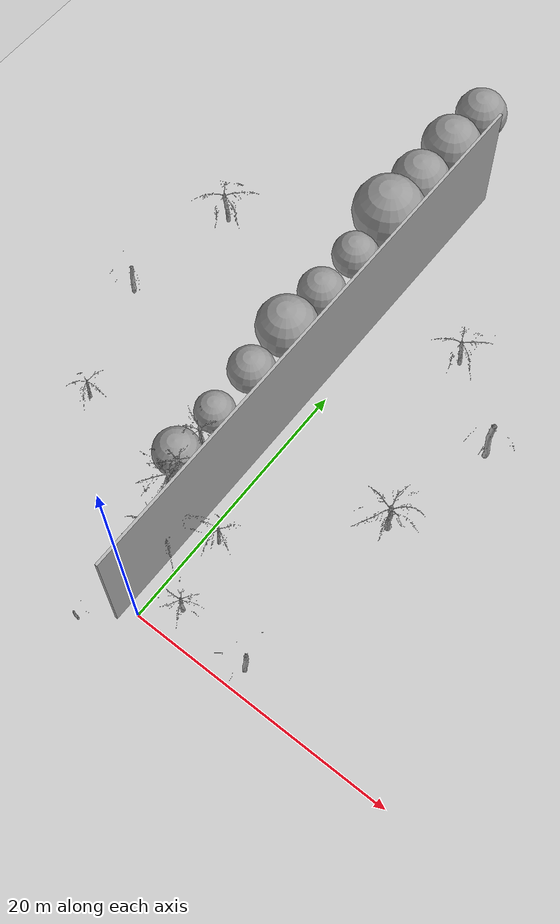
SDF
<sdf version="1.6">
 <world name="default">
  <model name="ground_plane">
   <static>1</static>
   <link name="link">
    <collision name="collision">
     <geometry><plane><normal>0 0 1</normal><size>1000 1000</size></plane></geometry>
     <surface>
      <contact><collide_bitmask>65535</collide_bitmask></contact>
      <friction><ode><mu>100</mu><mu2>50</mu2></ode></friction>
     </surface>
    </collision>
    <visual name="visual">
     <cast_shadows>0</cast_shadows>
     <geometry><plane><normal>0 0 1</normal><size>1000 1000</size></plane></geometry>
     <material>
      <script><uri>file://media/materials/scripts/gazebo.material</uri><name>Gazebo/Grey</name></script>
     </material>
    </visual>
   </link>
  </model>
  <model name="unit_sphere_0">
   <pose>-5 10 1.75 0 -0 0</pose>
   <static>1</static>
   <link name="link">
    <inertial>
     <mass>1</mass>
     <inertia><ixx>0.1</ixx><ixy>0</ixy><ixz>0</ixz><iyy>0.1</iyy><iyz>0</iyz><izz>0.1</izz></inertia>
    </inertial>
    <collision name="collision"><geometry><sphere><radius>1.75</radius></sphere></geometry></collision>
    <visual name="visual">
     <geometry><sphere><radius>1.75</radius></sphere></geometry>
     <material>
      <script><name>Gazebo/Grey</name><uri>file://media/materials/scripts/gazebo.material</uri></script>
     </material>
    </visual>
   </link>
  </model>
  <model name="unit_sphere_1">
   <pose>-5 14 1.5 0 -0 0</pose>
   <static>1</static>
   <link name="link">
    <inertial>
     <mass>1</mass>
     <inertia><ixx>0.1</ixx><ixy>0</ixy><ixz>0</ixz><iyy>0.1</iyy><iyz>0</iyz><izz>0.1</izz></inertia>
    </inertial>
    <collision name="collision"><geometry><sphere><radius>1.5</radius></sphere></geometry></collision>
    <visual name="visual">
     <geometry><sphere><radius>1.5</radius></sphere></geometry>
     <material>
      <script><name>Gazebo/Grey</name><uri>file://media/materials/scripts/gazebo.material</uri></script>
     </material>
    </visual>
   </link>
  </model>
  <model name="unit_sphere_2">
   <pose>-5 18 1.75 0 -0 0</pose>
   <static>1</static>
   <link name="link">
    <inertial>
     <mass>1</mass>
     <inertia><ixx>0.1</ixx><ixy>0</ixy><ixz>0</ixz><iyy>0.1</iyy><iyz>0</iyz><izz>0.1</izz></inertia>
    </inertial>
    <collision name="collision"><geometry><sphere><radius>1.75</radius></sphere></geometry></collision>
    <visual name="visual">
     <geometry><sphere><radius>1.75</radius></sphere></geometry>
     <material>
      <script><name>Gazebo/Grey</name><uri>file://media/materials/scripts/gazebo.material</uri></script>
     </material>
    </visual>
   </link>
  </model>
  <model name="unit_sphere_3">
   <pose>-5 22 2.3 0 -0 0</pose>
   <static>1</static>
   <link name="link">
    <inertial>
     <mass>1</mass>
     <inertia><ixx>0.1</ixx><ixy>0</ixy><ixz>0</ixz><iyy>0.1</iyy><iyz>0</iyz><izz>0.1</izz></inertia>
    </inertial>
    <collision name="collision"><geometry><sphere><radius>2.3</radius></sphere></geometry></collision>
    <visual name="visual">
     <geometry><sphere><radius>2.3</radius></sphere></geometry>
     <material>
      <script><name>Gazebo/Grey</name><uri>file://media/materials/scripts/gazebo.material</uri></script>
     </material>
    </visual>
   </link>
  </model>
  <model name="unit_sphere_4">
   <pose>-5 26 1.8 0 -0 0</pose>
   <static>1</static>
   <link name="link">
    <inertial>
     <mass>1</mass>
     <inertia><ixx>0.1</ixx><ixy>0</ixy><ixz>0</ixz><iyy>0.1</iyy><iyz>0</iyz><izz>0.1</izz></inertia>
    </inertial>
    <collision name="collision"><geometry><sphere><radius>1.8</radius></sphere></geometry></collision>
    <visual name="visual">
     <geometry><sphere><radius>1.8</radius></sphere></geometry>
     <material>
      <script><name>Gazebo/Grey</name><uri>file://media/materials/scripts/gazebo.material</uri></script>
     </material>
    </visual>
   </link>
  </model>
  <model name="unit_sphere_5">
   <pose>-5 30 1.75 0 -0 0</pose>
   <static>1</static>
   <link name="link">
    <inertial>
     <mass>1</mass>
     <inertia><ixx>0.1</ixx><ixy>0</ixy><ixz>0</ixz><iyy>0.1</iyy><iyz>0</iyz><izz>0.1</izz></inertia>
    </inertial>
    <collision name="collision"><geometry><sphere><radius>1.75</radius></sphere></geometry></collision>
    <visual name="visual">
     <geometry><sphere><radius>1.75</radius></sphere></geometry>
     <material>
      <script><name>Gazebo/Grey</name><uri>file://media/materials/scripts/gazebo.material</uri></script>
     </material>
    </visual>
   </link>
  </model>
  <model name="unit_sphere_6">
   <pose>-5 34 2.75 0 -0 0</pose>
   <static>1</static>
   <link name="link">
    <inertial>
     <mass>1</mass>
     <inertia><ixx>0.1</ixx><ixy>0</ixy><ixz>0</ixz><iyy>0.1</iyy><iyz>0</iyz><izz>0.1</izz></inertia>
    </inertial>
    <collision name="collision"><geometry><sphere><radius>2.75</radius></sphere></geometry></collision>
    <visual name="visual">
     <geometry><sphere><radius>2.75</radius></sphere></geometry>
     <material>
      <script><name>Gazebo/Grey</name><uri>file://media/materials/scripts/gazebo.material</uri></script>
     </material>
    </visual>
   </link>
  </model>
  <model name="unit_sphere_7">
   <pose>-5 38 2.25 0 -0 0</pose>
   <static>1</static>
   <link name="link">
    <inertial>
     <mass>1</mass>
     <inertia><ixx>0.1</ixx><ixy>0</ixy><ixz>0</ixz><iyy>0.1</iyy><iyz>0</iyz><izz>0.1</izz></inertia>
    </inertial>
    <collision name="collision"><geometry><sphere><radius>2.25</radius></sphere></geometry></collision>
    <visual name="visual">
     <geometry><sphere><radius>2.25</radius></sphere></geometry>
     <material>
      <script><name>Gazebo/Grey</name><uri>file://media/materials/scripts/gazebo.material</uri></script>
     </material>
    </visual>
   </link>
  </model>
  <model name="unit_sphere_8">
   <pose>-5 42 2.3 0 -0 0</pose>
   <static>1</static>
   <link name="link">
    <inertial>
     <mass>1</mass>
     <inertia><ixx>0.1</ixx><ixy>0</ixy><ixz>0</ixz><iyy>0.1</iyy><iyz>0</iyz><izz>0.1</izz></inertia>
    </inertial>
    <collision name="collision"><geometry><sphere><radius>2.3</radius></sphere></geometry></collision>
    <visual name="visual">
     <geometry><sphere><radius>2.3</radius></sphere></geometry>
     <material>
      <script><name>Gazebo/Grey</name><uri>file://media/materials/scripts/gazebo.material</uri></script>
     </material>
    </visual>
   </link>
  </model>
  <model name="unit_sphere_9">
   <pose>-5 46 2 0 -0 0</pose>
   <static>1</static>
   <link name="link">
    <inertial>
     <mass>1</mass>
     <inertia><ixx>0.1</ixx><ixy>0</ixy><ixz>0</ixz><iyy>0.1</iyy><iyz>0</iyz><izz>0.1</izz></inertia>
    </inertial>
    <collision name="collision"><geometry><sphere><radius>2</radius></sphere></geometry></collision>
    <visual name="visual">
     <geometry><sphere><radius>2</radius></sphere></geometry>
     <material>
      <script><name>Gazebo/Grey</name><uri>file://media/materials/scripts/gazebo.material</uri></script>
     </material>
    </visual>
   </link>
  </model>
  <model name="grey_wall_boundary_3">
   <static>1</static>
   <link name="link">
    <pose>0 0 5 0 -0 1.5708</pose>
    <collision name="collision"><geometry><box><size>42 0.2 10</size></box></geometry></collision>
    <visual name="visual">
     <cast_shadows>0</cast_shadows>
     <geometry><box><size>42 0.2 10</size></box></geometry>
    </visual>
   </link>
   <pose>-1 20 0 0 -0 0</pose>
  </model>
  <model name="tre_1">
   <static>1</static>
   <link name="link">
    <pose>-3.7424508527905544 5.8271430137608995 0 0 0 3.567828267389643</pose>
    <inertial>
     <mass>100</mass>
     <inertia><ixx>100</ixx><ixy>0</ixy><ixz>0</ixz><iyy>100</iyy><iyz>0</iyz><izz>100</izz></inertia>
    </inertial>
    <collision name="collision">
     <geometry>
      <mesh>
       <uri>file:///home/dgguglielmo/forest_gen/models_high_res/picea_abies_4.dae</uri>
       <scale>1.1164753697339267 1.1164753697339267 1.1164753697339267</scale>
      </mesh>
     </geometry>
    </collision>
    <visual name="visual">
     <geometry>
      <mesh>
       <uri>file:///home/dgguglielmo/forest_gen/models_high_res/picea_abies_4.dae</uri>
       <scale>1.1164753697339267 1.1164753697339267 1.1164753697339267</scale>
      </mesh>
     </geometry>
    </visual>
   </link>
   <pose>-3.7424508527905544 5.8271430137608995 0 0 0 3.567828267389643</pose>
  </model>
  <model name="tre_26">
   <static>1</static>
   <link name="link">
    <pose>-1.3321117786917434 4.8243380110685266 0 0 0 0.2953682563070458</pose>
    <inertial>
     <mass>100</mass>
     <inertia><ixx>100</ixx><ixy>0</ixy><ixz>0</ixz><iyy>100</iyy><iyz>0</iyz><izz>100</izz></inertia>
    </inertial>
    <collision name="collision">
     <geometry>
      <mesh>
       <uri>file:///home/dgguglielmo/forest_gen/models_high_res/picea_abies_4.dae</uri>
       <scale>1.7479213084722356 1.7479213084722356 1.7479213084722356</scale>
      </mesh>
     </geometry>
    </collision>
    <visual name="visual">
     <geometry>
      <mesh>
       <uri>file:///home/dgguglielmo/forest_gen/models_high_res/picea_abies_4.dae</uri>
       <scale>1.7479213084722356 1.7479213084722356 1.7479213084722356</scale>
      </mesh>
     </geometry>
    </visual>
   </link>
   <pose>-1.3321117786917434 4.8243380110685266 0 0 0 0.2953682563070458</pose>
  </model>
  <model name="tre_30">
   <static>1</static>
   <link name="link">
    <pose>-3.83021637844341 16.230051146210037 0 0 0 4.921718425677457</pose>
    <inertial>
     <mass>100</mass>
     <inertia><ixx>100</ixx><ixy>0</ixy><ixz>0</ixz><iyy>100</iyy><iyz>0</iyz><izz>100</izz></inertia>
    </inertial>
    <collision name="collision">
     <geometry>
      <mesh>
       <uri>file:///home/dgguglielmo/forest_gen/models_high_res/picea_abies_6.dae</uri>
       <scale>1.904307043205943 1.904307043205943 1.904307043205943</scale>
      </mesh>
     </geometry>
    </collision>
    <visual name="visual">
     <geometry>
      <mesh>
       <uri>file:///home/dgguglielmo/forest_gen/models_high_res/picea_abies_6.dae</uri>
       <scale>1.904307043205943 1.904307043205943 1.904307043205943</scale>
      </mesh>
     </geometry>
    </visual>
   </link>
   <pose>-3.83021637844341 16.230051146210037 0 0 0 4.921718425677457</pose>
  </model>
  <model name="tre_32">
   <static>1</static>
   <link name="link">
    <pose>2.796446823861153 6.41436896741228 0 0 0 4.341068440386926</pose>
    <inertial>
     <mass>100</mass>
     <inertia><ixx>100</ixx><ixy>0</ixy><ixz>0</ixz><iyy>100</iyy><iyz>0</iyz><izz>100</izz></inertia>
    </inertial>
    <collision name="collision">
     <geometry>
      <mesh>
       <uri>file:///home/dgguglielmo/forest_gen/models_high_res/picea_abies_6.dae</uri>
       <scale>1.4936713386780938 1.4936713386780938 1.4936713386780938</scale>
      </mesh>
     </geometry>
    </collision>
    <visual name="visual">
     <geometry>
      <mesh>
       <uri>file:///home/dgguglielmo/forest_gen/models_high_res/picea_abies_6.dae</uri>
       <scale>1.4936713386780938 1.4936713386780938 1.4936713386780938</scale>
      </mesh>
     </geometry>
    </visual>
   </link>
   <pose>2.796446823861153 6.41436896741228 0 0 0 4.341068440386926</pose>
  </model>
  <model name="tre_53">
   <static>1</static>
   <link name="link">
    <pose>-2.2331080808950006 3.9262235672835573 0 0 0 4.982630782343486</pose>
    <inertial>
     <mass>100</mass>
     <inertia><ixx>100</ixx><ixy>0</ixy><ixz>0</ixz><iyy>100</iyy><iyz>0</iyz><izz>100</izz></inertia>
    </inertial>
    <collision name="collision">
     <geometry>
      <mesh>
       <uri>file:///home/dgguglielmo/forest_gen/models_high_res/picea_abies_5.dae</uri>
       <scale>1.1545558972463663 1.1545558972463663 1.1545558972463663</scale>
      </mesh>
     </geometry>
    </collision>
    <visual name="visual">
     <geometry>
      <mesh>
       <uri>file:///home/dgguglielmo/forest_gen/models_high_res/picea_abies_5.dae</uri>
       <scale>1.1545558972463663 1.1545558972463663 1.1545558972463663</scale>
      </mesh>
     </geometry>
    </visual>
   </link>
   <pose>-2.2331080808950006 3.9262235672835573 0 0 0 4.982630782343486</pose>
  </model>
  <model name="tre_65">
   <static>1</static>
   <link name="link">
    <pose>-0.10440139023194206 4.807188138289934 0 0 0 0.8563756328680432</pose>
    <inertial>
     <mass>100</mass>
     <inertia><ixx>100</ixx><ixy>0</ixy><ixz>0</ixz><iyy>100</iyy><iyz>0</iyz><izz>100</izz></inertia>
    </inertial>
    <collision name="collision">
     <geometry>
      <mesh>
       <uri>file:///home/dgguglielmo/forest_gen/models_high_res/picea_abies_4.dae</uri>
       <scale>1.8036484680612435 1.8036484680612435 1.8036484680612435</scale>
      </mesh>
     </geometry>
    </collision>
    <visual name="visual">
     <geometry>
      <mesh>
       <uri>file:///home/dgguglielmo/forest_gen/models_high_res/picea_abies_4.dae</uri>
       <scale>1.8036484680612435 1.8036484680612435 1.8036484680612435</scale>
      </mesh>
     </geometry>
    </visual>
   </link>
   <pose>-0.10440139023194206 4.807188138289934 0 0 0 0.8563756328680432</pose>
  </model>
  <model name="tre_66">
   <static>1</static>
   <link name="link">
    <pose>3.8884317975634097 8.276792703485953 0 0 0 1.5993257516534274</pose>
    <inertial>
     <mass>100</mass>
     <inertia><ixx>100</ixx><ixy>0</ixy><ixz>0</ixz><iyy>100</iyy><iyz>0</iyz><izz>100</izz></inertia>
    </inertial>
    <collision name="collision">
     <geometry>
      <mesh>
       <uri>file:///home/dgguglielmo/forest_gen/models_high_res/picea_abies_4.dae</uri>
       <scale>1.4336011551887837 1.4336011551887837 1.4336011551887837</scale>
      </mesh>
     </geometry>
    </collision>
    <visual name="visual">
     <geometry>
      <mesh>
       <uri>file:///home/dgguglielmo/forest_gen/models_high_res/picea_abies_4.dae</uri>
       <scale>1.4336011551887837 1.4336011551887837 1.4336011551887837</scale>
      </mesh>
     </geometry>
    </visual>
   </link>
   <pose>3.8884317975634097 8.276792703485953 0 0 0 1.5993257516534274</pose>
  </model>
  <model name="tre_84">
   <static>1</static>
   <link name="link">
    <pose>-0.12443257919178308 2.8410454989945606 0 0 0 0.6517490102462455</pose>
    <inertial>
     <mass>100</mass>
     <inertia><ixx>100</ixx><ixy>0</ixy><ixz>0</ixz><iyy>100</iyy><iyz>0</iyz><izz>100</izz></inertia>
    </inertial>
    <collision name="collision">
     <geometry>
      <mesh>
       <uri>file:///home/dgguglielmo/forest_gen/models_high_res/picea_abies_4.dae</uri>
       <scale>1.9719682959089537 1.9719682959089537 1.9719682959089537</scale>
      </mesh>
     </geometry>
    </collision>
    <visual name="visual">
     <geometry>
      <mesh>
       <uri>file:///home/dgguglielmo/forest_gen/models_high_res/picea_abies_4.dae</uri>
       <scale>1.9719682959089537 1.9719682959089537 1.9719682959089537</scale>
      </mesh>
     </geometry>
    </visual>
   </link>
   <pose>-0.12443257919178308 2.8410454989945606 0 0 0 0.6517490102462455</pose>
  </model>
  <model name="tre_87">
   <static>1</static>
   <link name="link">
    <pose>1.508996812841147 9.361791323177798 0 0 0 5.504763427922698</pose>
    <inertial>
     <mass>100</mass>
     <inertia><ixx>100</ixx><ixy>0</ixy><ixz>0</ixz><iyy>100</iyy><iyz>0</iyz><izz>100</izz></inertia>
    </inertial>
    <collision name="collision">
     <geometry>
      <mesh>
       <uri>file:///home/dgguglielmo/forest_gen/models_high_res/picea_abies_4.dae</uri>
       <scale>1.7805441548745358 1.7805441548745358 1.7805441548745358</scale>
      </mesh>
     </geometry>
    </collision>
    <visual name="visual">
     <geometry>
      <mesh>
       <uri>file:///home/dgguglielmo/forest_gen/models_high_res/picea_abies_4.dae</uri>
       <scale>1.7805441548745358 1.7805441548745358 1.7805441548745358</scale>
      </mesh>
     </geometry>
    </visual>
   </link>
   <pose>1.508996812841147 9.361791323177798 0 0 0 5.504763427922698</pose>
  </model>
  <model name="tre_115">
   <static>1</static>
   <link name="link">
    <pose>-9.253889412839968 7.578268013050664 0 0 0 2.815101479211592</pose>
    <inertial>
     <mass>100</mass>
     <inertia><ixx>100</ixx><ixy>0</ixy><ixz>0</ixz><iyy>100</iyy><iyz>0</iyz><izz>100</izz></inertia>
    </inertial>
    <collision name="collision">
     <geometry>
      <mesh>
       <uri>file:///home/dgguglielmo/forest_gen/models_high_res/picea_abies_6.dae</uri>
       <scale>0.69230287844281 0.69230287844281 0.69230287844281</scale>
      </mesh>
     </geometry>
    </collision>
    <visual name="visual">
     <geometry>
      <mesh>
       <uri>file:///home/dgguglielmo/forest_gen/models_high_res/picea_abies_6.dae</uri>
       <scale>0.69230287844281 0.69230287844281 0.69230287844281</scale>
      </mesh>
     </geometry>
    </visual>
   </link>
   <pose>-9.253889412839968 7.578268013050664 0 0 0 2.815101479211592</pose>
  </model>
  <model name="tre_117">
   <static>1</static>
   <link name="link">
    <pose>2.2833301964583868 16.63173161424794 0 0 0 2.1143089889736917</pose>
    <inertial>
     <mass>100</mass>
     <inertia><ixx>100</ixx><ixy>0</ixy><ixz>0</ixz><iyy>100</iyy><iyz>0</iyz><izz>100</izz></inertia>
    </inertial>
    <collision name="collision">
     <geometry>
      <mesh>
       <uri>file:///home/dgguglielmo/forest_gen/models_high_res/picea_abies_5.dae</uri>
       <scale>1.080077542661789 1.080077542661789 1.080077542661789</scale>
      </mesh>
     </geometry>
    </collision>
    <visual name="visual">
     <geometry>
      <mesh>
       <uri>file:///home/dgguglielmo/forest_gen/models_high_res/picea_abies_5.dae</uri>
       <scale>1.080077542661789 1.080077542661789 1.080077542661789</scale>
      </mesh>
     </geometry>
    </visual>
   </link>
   <pose>2.2833301964583868 16.63173161424794 0 0 0 2.1143089889736917</pose>
  </model>
  <model name="tre_132">
   <static>1</static>
   <link name="link">
    <pose>2.346813964557491 14.196252643175868 0 0 0 6.209960193507459</pose>
    <inertial>
     <mass>100</mass>
     <inertia><ixx>100</ixx><ixy>0</ixy><ixz>0</ixz><iyy>100</iyy><iyz>0</iyz><izz>100</izz></inertia>
    </inertial>
    <collision name="collision">
     <geometry>
      <mesh>
       <uri>file:///home/dgguglielmo/forest_gen/models_high_res/picea_abies_5.dae</uri>
       <scale>1.5086730725893656 1.5086730725893656 1.5086730725893656</scale>
      </mesh>
     </geometry>
    </collision>
    <visual name="visual">
     <geometry>
      <mesh>
       <uri>file:///home/dgguglielmo/forest_gen/models_high_res/picea_abies_5.dae</uri>
       <scale>1.5086730725893656 1.5086730725893656 1.5086730725893656</scale>
      </mesh>
     </geometry>
    </visual>
   </link>
   <pose>2.346813964557491 14.196252643175868 0 0 0 6.209960193507459</pose>
  </model>
  <model name="tre_149">
   <static>1</static>
   <link name="link">
    <pose>0.37250869263879594 12.117823417885361 0 0 0 0.26945125544427295</pose>
    <inertial>
     <mass>100</mass>
     <inertia><ixx>100</ixx><ixy>0</ixy><ixz>0</ixz><iyy>100</iyy><iyz>0</iyz><izz>100</izz></inertia>
    </inertial>
    <collision name="collision">
     <geometry>
      <mesh>
       <uri>file:///home/dgguglielmo/forest_gen/models_high_res/picea_abies_6.dae</uri>
       <scale>1.0042736714849632 1.0042736714849632 1.0042736714849632</scale>
      </mesh>
     </geometry>
    </collision>
    <visual name="visual">
     <geometry>
      <mesh>
       <uri>file:///home/dgguglielmo/forest_gen/models_high_res/picea_abies_6.dae</uri>
       <scale>1.0042736714849632 1.0042736714849632 1.0042736714849632</scale>
      </mesh>
     </geometry>
    </visual>
   </link>
   <pose>0.37250869263879594 12.117823417885361 0 0 0 0.26945125544427295</pose>
  </model>
  <model name="tre_151">
   <static>1</static>
   <link name="link">
    <pose>-7.319583975543441 13.838990775986133 0 0 0 0.024660824016253906</pose>
    <inertial>
     <mass>100</mass>
     <inertia><ixx>100</ixx><ixy>0</ixy><ixz>0</ixz><iyy>100</iyy><iyz>0</iyz><izz>100</izz></inertia>
    </inertial>
    <collision name="collision">
     <geometry>
      <mesh>
       <uri>file:///home/dgguglielmo/forest_gen/models_high_res/picea_abies_5.dae</uri>
       <scale>1.6172650946785483 1.6172650946785483 1.6172650946785483</scale>
      </mesh>
     </geometry>
    </collision>
    <visual name="visual">
     <geometry>
      <mesh>
       <uri>file:///home/dgguglielmo/forest_gen/models_high_res/picea_abies_5.dae</uri>
       <scale>1.6172650946785483 1.6172650946785483 1.6172650946785483</scale>
      </mesh>
     </geometry>
    </visual>
   </link>
   <pose>-7.319583975543441 13.838990775986133 0 0 0 0.024660824016253906</pose>
  </model>
  <model name="tre_153">
   <static>1</static>
   <link name="link">
    <pose>2.1163822064283337 18.45162693884498 0 0 0 1.6859000519741298</pose>
    <inertial>
     <mass>100</mass>
     <inertia><ixx>100</ixx><ixy>0</ixy><ixz>0</ixz><iyy>100</iyy><iyz>0</iyz><izz>100</izz></inertia>
    </inertial>
    <collision name="collision">
     <geometry>
      <mesh>
       <uri>file:///home/dgguglielmo/forest_gen/models_high_res/picea_abies_6.dae</uri>
       <scale>1.386979773037842 1.386979773037842 1.386979773037842</scale>
      </mesh>
     </geometry>
    </collision>
    <visual name="visual">
     <geometry>
      <mesh>
       <uri>file:///home/dgguglielmo/forest_gen/models_high_res/picea_abies_6.dae</uri>
       <scale>1.386979773037842 1.386979773037842 1.386979773037842</scale>
      </mesh>
     </geometry>
    </visual>
   </link>
   <pose>2.1163822064283337 18.45162693884498 0 0 0 1.6859000519741298</pose>
  </model>
 </world>
</sdf>
